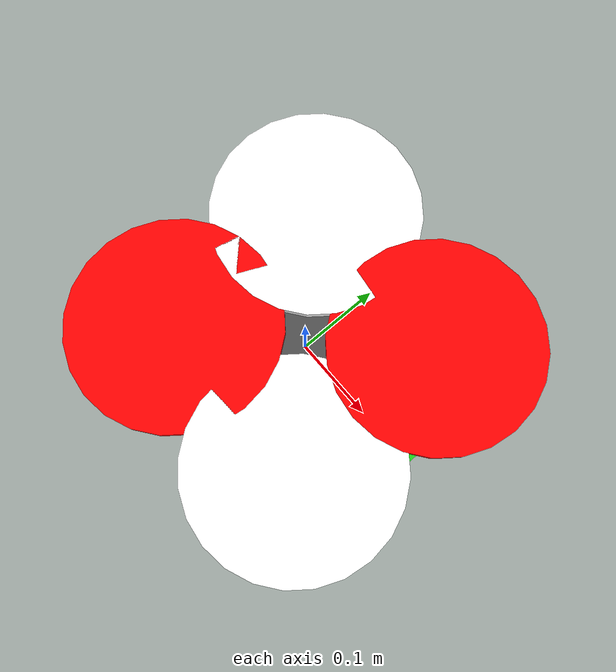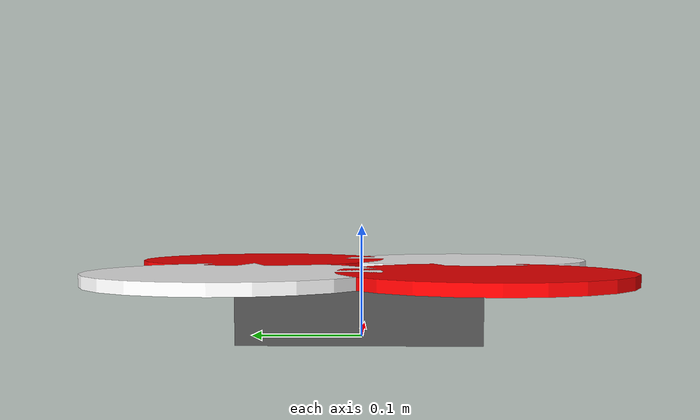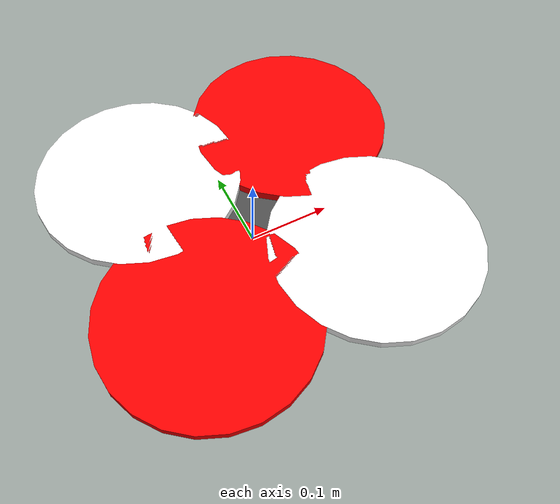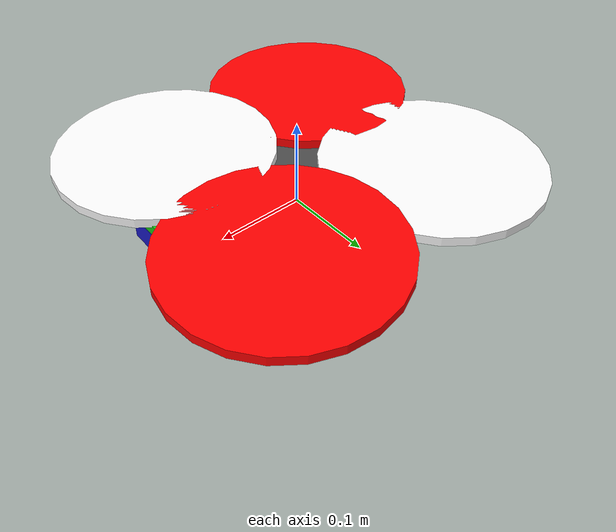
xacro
<?xml version="1.0"?>
<robot xmlns:xacro="http://www.ros.org/wiki/xacro" name="my_drone">

    <link name="base_footprint" />

    <link name="base_link">
        <visual>
            <origin xyz="0 0 0" rpy="0 0 0" />
            <geometry>
                <box size="0.2 0.2 0.05" />
            </geometry>
            <material name="gray">
                <color rgba="0.3 0.3 0.3 1.0" />
            </material>
        </visual>

        <visual>
            <origin xyz="0.1 0.1 0.03" rpy="0 0 0" />
            <geometry>
                <cylinder radius="0.12" length="0.01"/>
            </geometry>
            <material name="red">
                <color rgba="1 0 0 1"/>
            </material>
        </visual>

        <visual>
            <origin xyz="0.1 -0.1 0.03" rpy="0 0 0" />
            <geometry>
                <cylinder radius="0.12" length="0.01"/>
            </geometry>
            <material name="white">
                <color rgba="1 1 1 1"/>
            </material>
        </visual>

        <visual>
            <origin xyz="-0.1 -0.1 0.03" rpy="0 0 0" />
            <geometry>
                <cylinder radius="0.12" length="0.01"/>
            </geometry>
            <material name="red">
                <color rgba="1 0 0 1"/>
            </material>
        </visual>

        <visual>
            <origin xyz="-0.1 0.1 0.03" rpy="0 0 0" />
            <geometry>
                <cylinder radius="0.12" length="0.01"/>
            </geometry>
            <material name="white">
                <color rgba="1 1 1 1"/>
            </material>
        </visual>

        <collision>
            <origin xyz="0 0 0" rpy="0 0 0" />
            <geometry>
                <box size="0.2 0.2 0.05" />
            </geometry>
        </collision>
    </link>

    <link name="D400_link">
        <visual>
            <origin xyz="0 0 0" rpy="0 0 1.57" />
            <geometry>
                <box size="0.09 0.025 0.025" />
            </geometry>
            <material name="blue">
                <color rgba="0.1 0.1 0.8 1.0" />
            </material>
        </visual>
    </link>

    <link name="Real_T265_link">
        <visual>
            <origin xyz="0 0 0" rpy="0 0 1.57" />
            <geometry>
                <box size="0.108 0.025 0.013" />
            </geometry>
            <material name="green">
                <color rgba="0.1 0.8 0.1 1.0" />
            </material>
        </visual>
    </link>

    <joint name="base_joint" type="fixed">
        <parent link="base_footprint" />
        <child link="base_link" />
        <origin xyz="0.0 0.0 0.03" rpy="0 0 0" />
    </joint>

    <joint name="base_to_d400_joint" type="fixed">
        <parent link="base_link"/>
        <child link="D400_link"/>
        <origin xyz="0.16 0 0" rpy="0 0 0" />
    </joint>

    <joint name="base_to_t265_joint" type="fixed">
        <parent link="base_link"/>
        <child link="Real_T265_link"/>
        <origin xyz="0.16 0 0.02" rpy="0 0 0" />
    </joint>

</robot>
